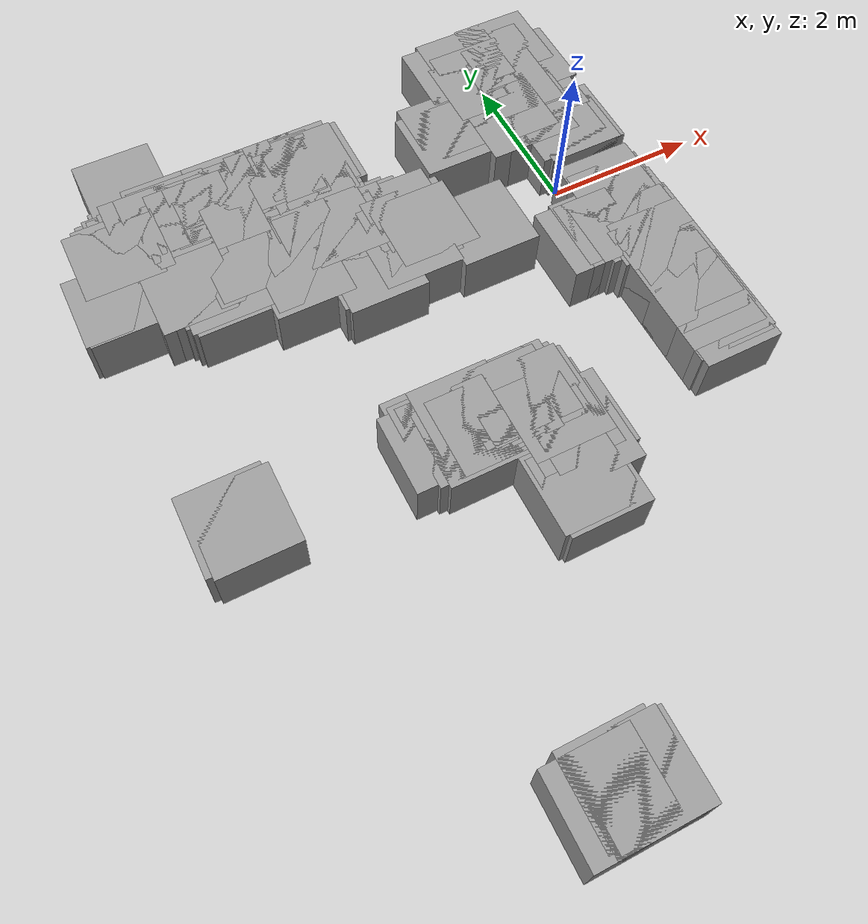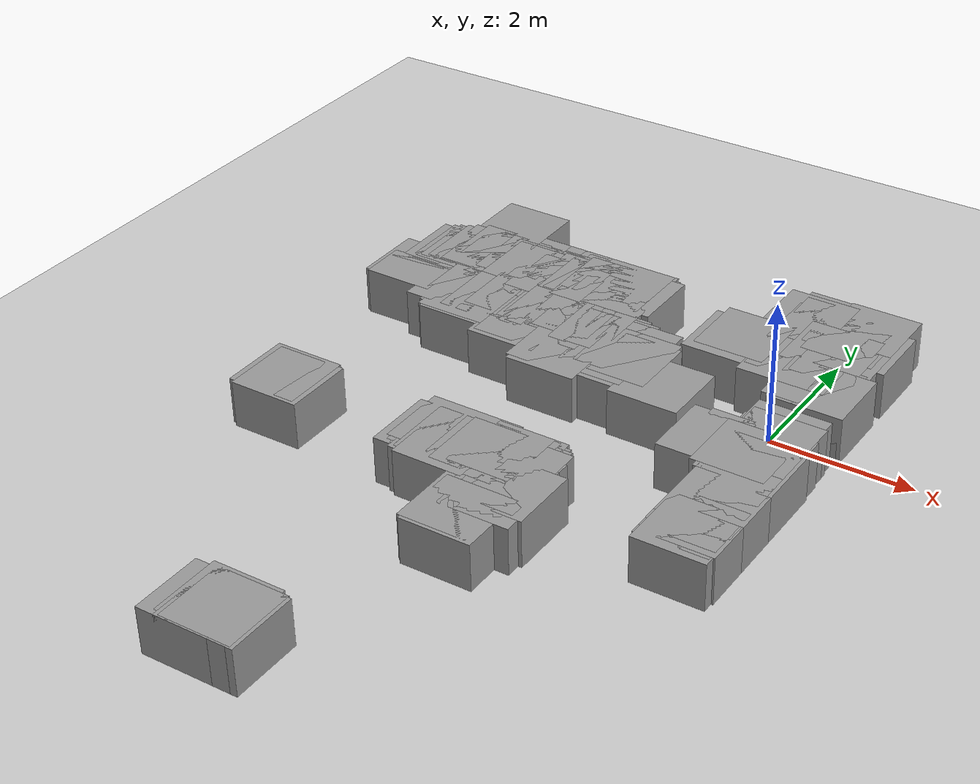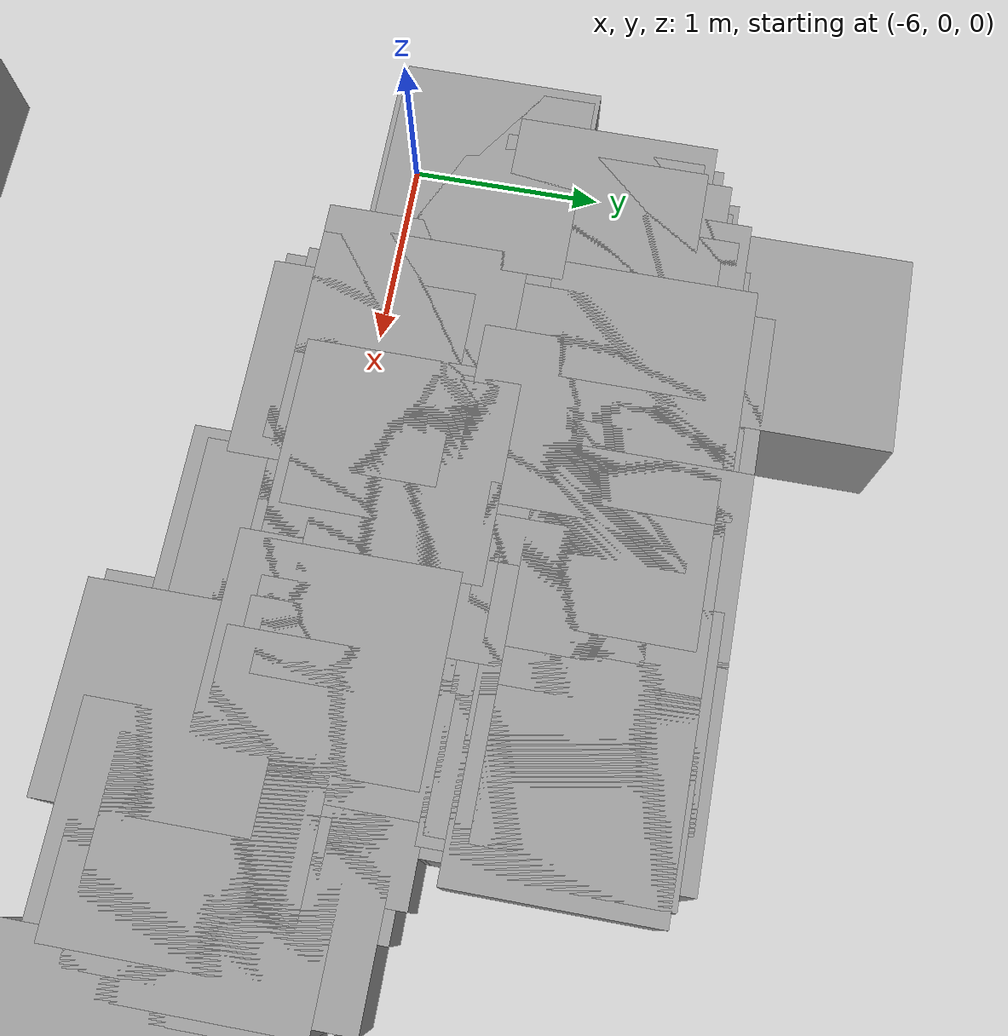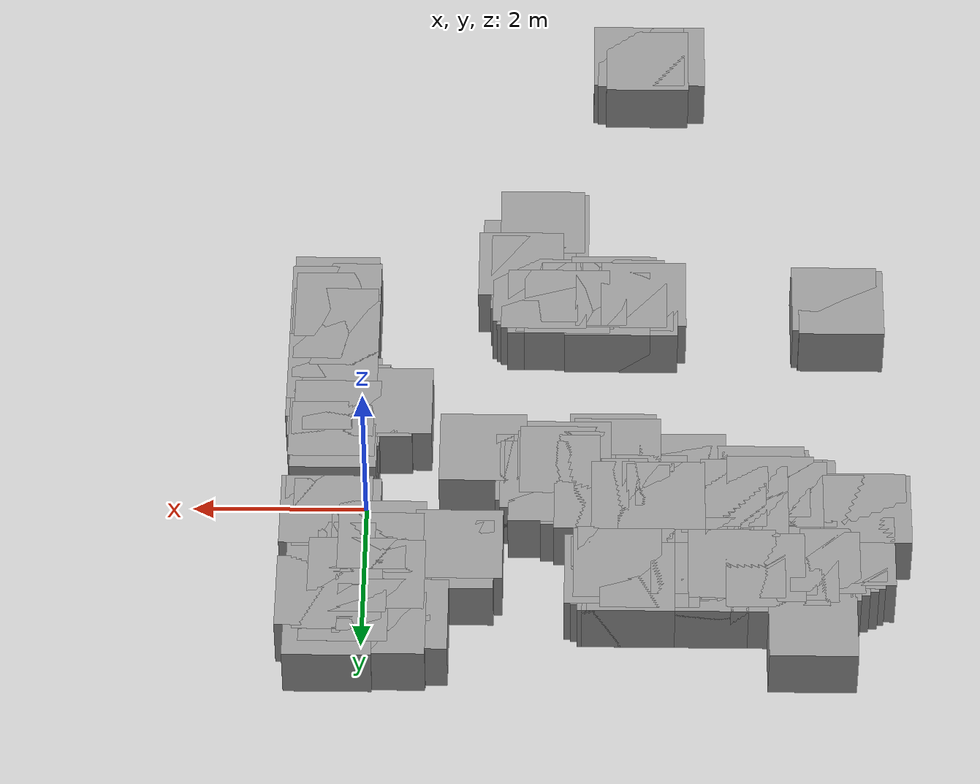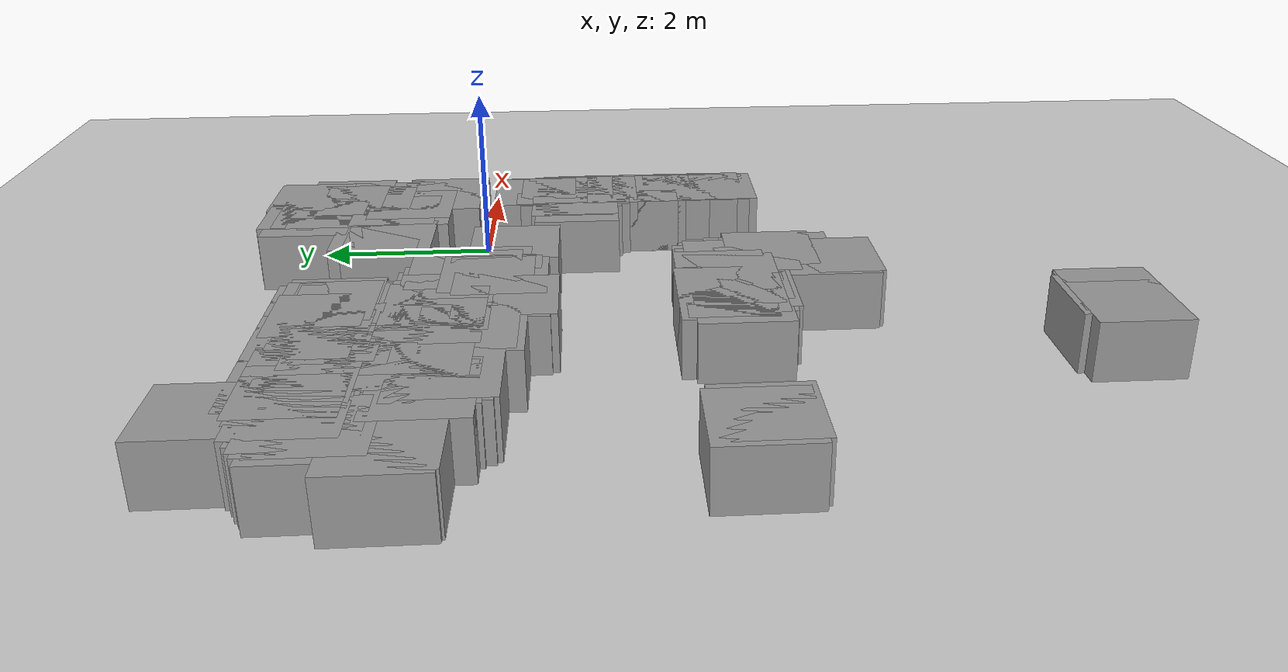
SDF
<sdf version="1.7">
 <world name="default">
  <model name="ground_plane">
   <static>1</static>
   <link name="link">
    <collision name="collision">
     <geometry><plane><normal>0 0 1</normal><size>100 100</size></plane></geometry>
     <surface>
      <contact><collide_bitmask>65535</collide_bitmask></contact>
      <friction><ode><mu>100</mu><mu2>50</mu2></ode></friction>
     </surface>
    </collision>
    <visual name="visual">
     <cast_shadows>0</cast_shadows>
     <geometry><plane><normal>0 0 1</normal><size>100 100</size></plane></geometry>
     <material>
      <script><uri>file://media/materials/scripts/gazebo.material</uri><name>Gazebo/Grey</name></script>
     </material>
    </visual>
   </link>
  </model>
  <include>
   <uri>model://unit_box</uri>
   <name>map_box_359</name>
   <pose>0.35719 2.14754 0.15000 0.00000 0.00000 0.00000</pose>
   <scale>0.05000 0.10000 0.80000</scale>
  </include>
  <include>
   <uri>model://unit_box</uri>
   <name>map_box_368</name>
   <pose>-5.09281 2.09754 0.15000 0.00000 0.00000 0.00000</pose>
   <scale>0.05000 0.10000 0.80000</scale>
  </include>
  <include>
   <uri>model://unit_box</uri>
   <name>map_box_369</name>
   <pose>-0.49281 2.04754 0.15000 0.00000 0.00000 0.00000</pose>
   <scale>0.05000 0.20000 0.80000</scale>
  </include>
  <include>
   <uri>model://unit_box</uri>
   <name>map_box_370</name>
   <pose>-0.24281 2.12254 0.15000 0.00000 0.00000 0.00000</pose>
   <scale>0.05000 0.05000 0.80000</scale>
  </include>
  <include>
   <uri>model://unit_box</uri>
   <name>map_box_383</name>
   <pose>-0.21781 1.97254 0.15000 0.00000 0.00000 0.00000</pose>
   <scale>0.10000 0.15000 0.80000</scale>
  </include>
  <include>
   <uri>model://unit_box</uri>
   <name>map_box_384</name>
   <pose>0.18219 1.94754 0.15000 0.00000 0.00000 0.00000</pose>
   <scale>0.10000 0.20000 0.80000</scale>
  </include>
  <include>
   <uri>model://unit_box</uri>
   <name>map_box_388</name>
   <pose>0.35719 1.22254 0.15000 0.00000 0.00000 0.00000</pose>
   <scale>0.05000 1.55000 0.80000</scale>
  </include>
  <include>
   <uri>model://unit_box</uri>
   <name>map_box_389</name>
   <pose>0.45719 1.72254 0.15000 0.00000 0.00000 0.00000</pose>
   <scale>0.05000 0.55000 0.80000</scale>
  </include>
  <include>
   <uri>model://unit_box</uri>
   <name>map_box_394</name>
   <pose>-0.19281 1.82254 0.15000 0.00000 0.00000 0.00000</pose>
   <scale>0.05000 0.15000 0.80000</scale>
  </include>
  <include>
   <uri>model://unit_box</uri>
   <name>map_box_401</name>
   <pose>-0.24281 1.79754 0.15000 0.00000 0.00000 0.00000</pose>
   <scale>0.05000 0.10000 0.80000</scale>
  </include>
  <include>
   <uri>model://unit_box</uri>
   <name>map_box_408</name>
   <pose>0.25719 1.77254 0.15000 0.00000 0.00000 0.00000</pose>
   <scale>0.05000 0.05000 0.80000</scale>
  </include>
  <include>
   <uri>model://unit_box</uri>
   <name>map_box_411</name>
   <pose>-0.29281 1.64754 0.15000 0.00000 0.00000 0.00000</pose>
   <scale>0.05000 0.10000 0.80000</scale>
  </include>
  <include>
   <uri>model://unit_box</uri>
   <name>map_box_412</name>
   <pose>-2.99281 1.47254 0.15000 0.00000 0.00000 0.00000</pose>
   <scale>0.05000 0.25000 0.80000</scale>
  </include>
  <include>
   <uri>model://unit_box</uri>
   <name>map_box_415</name>
   <pose>-2.94281 1.47254 0.15000 0.00000 0.00000 0.00000</pose>
   <scale>0.05000 0.15000 0.80000</scale>
  </include>
  <include>
   <uri>model://unit_box</uri>
   <name>map_box_416</name>
   <pose>-0.21781 1.47254 0.15000 0.00000 0.00000 0.00000</pose>
   <scale>0.10000 0.15000 0.80000</scale>
  </include>
  <include>
   <uri>model://unit_box</uri>
   <name>map_box_417</name>
   <pose>0.20719 1.52254 0.15000 0.00000 0.00000 0.00000</pose>
   <scale>0.05000 0.05000 0.80000</scale>
  </include>
  <include>
   <uri>model://unit_box</uri>
   <name>map_box_421</name>
   <pose>-4.66781 1.47254 0.15000 0.00000 0.00000 0.00000</pose>
   <scale>0.10000 0.05000 0.80000</scale>
  </include>
  <include>
   <uri>model://unit_box</uri>
   <name>map_box_422</name>
   <pose>-3.86781 1.47254 0.15000 0.00000 0.00000 0.00000</pose>
   <scale>0.10000 0.05000 0.80000</scale>
  </include>
  <include>
   <uri>model://unit_box</uri>
   <name>map_box_423</name>
   <pose>-3.69281 1.47254 0.15000 0.00000 0.00000 0.00000</pose>
   <scale>0.05000 0.05000 0.80000</scale>
  </include>
  <include>
   <uri>model://unit_box</uri>
   <name>map_box_424</name>
   <pose>-3.04281 1.47254 0.15000 0.00000 0.00000 0.00000</pose>
   <scale>0.05000 0.05000 0.80000</scale>
  </include>
  <include>
   <uri>model://unit_box</uri>
   <name>map_box_425</name>
   <pose>-2.86781 1.39754 0.15000 0.00000 0.00000 0.00000</pose>
   <scale>0.10000 0.20000 0.80000</scale>
  </include>
  <include>
   <uri>model://unit_box</uri>
   <name>map_box_426</name>
   <pose>0.10719 1.44754 0.15000 0.00000 0.00000 0.00000</pose>
   <scale>0.05000 0.10000 0.80000</scale>
  </include>
  <include>
   <uri>model://unit_box</uri>
   <name>map_box_429</name>
   <pose>-4.61781 1.39754 0.15000 0.00000 0.00000 0.00000</pose>
   <scale>0.10000 0.10000 0.80000</scale>
  </include>
  <include>
   <uri>model://unit_box</uri>
   <name>map_box_430</name>
   <pose>-3.79281 1.37254 0.15000 0.00000 0.00000 0.00000</pose>
   <scale>0.15000 0.15000 0.80000</scale>
  </include>
  <include>
   <uri>model://unit_box</uri>
   <name>map_box_431</name>
   <pose>-3.31781 1.42254 0.15000 0.00000 0.00000 0.00000</pose>
   <scale>0.10000 0.05000 0.80000</scale>
  </include>
  <include>
   <uri>model://unit_box</uri>
   <name>map_box_432</name>
   <pose>-3.19281 1.42254 0.15000 0.00000 0.00000 0.00000</pose>
   <scale>0.05000 0.05000 0.80000</scale>
  </include>
  <include>
   <uri>model://unit_box</uri>
   <name>map_box_433</name>
   <pose>0.15719 1.42254 0.15000 0.00000 0.00000 0.00000</pose>
   <scale>0.05000 0.05000 0.80000</scale>
  </include>
  <include>
   <uri>model://unit_box</uri>
   <name>map_box_434</name>
   <pose>-4.99281 1.37254 0.15000 0.00000 0.00000 0.00000</pose>
   <scale>0.05000 0.05000 0.80000</scale>
  </include>
  <include>
   <uri>model://unit_box</uri>
   <name>map_box_435</name>
   <pose>-4.79281 1.37254 0.15000 0.00000 0.00000 0.00000</pose>
   <scale>0.05000 0.05000 0.80000</scale>
  </include>
  <include>
   <uri>model://unit_box</uri>
   <name>map_box_436</name>
   <pose>-4.51781 1.32254 0.15000 0.00000 0.00000 0.00000</pose>
   <scale>0.10000 0.15000 0.80000</scale>
  </include>
  <include>
   <uri>model://unit_box</uri>
   <name>map_box_437</name>
   <pose>-3.96781 1.37254 0.15000 0.00000 0.00000 0.00000</pose>
   <scale>0.20000 0.05000 0.80000</scale>
  </include>
  <include>
   <uri>model://unit_box</uri>
   <name>map_box_438</name>
   <pose>-3.34281 1.32254 0.15000 0.00000 0.00000 0.00000</pose>
   <scale>0.05000 0.15000 0.80000</scale>
  </include>
  <include>
   <uri>model://unit_box</uri>
   <name>map_box_439</name>
   <pose>-3.24281 1.37254 0.15000 0.00000 0.00000 0.00000</pose>
   <scale>0.05000 0.05000 0.80000</scale>
  </include>
  <include>
   <uri>model://unit_box</uri>
   <name>map_box_440</name>
   <pose>-2.79281 1.37254 0.15000 0.00000 0.00000 0.00000</pose>
   <scale>0.05000 0.05000 0.80000</scale>
  </include>
  <include>
   <uri>model://unit_box</uri>
   <name>map_box_443</name>
   <pose>-5.14281 1.29754 0.15000 0.00000 0.00000 0.00000</pose>
   <scale>0.05000 0.10000 0.80000</scale>
  </include>
  <include>
   <uri>model://unit_box</uri>
   <name>map_box_444</name>
   <pose>-4.89281 1.32254 0.15000 0.00000 0.00000 0.00000</pose>
   <scale>0.15000 0.05000 0.80000</scale>
  </include>
  <include>
   <uri>model://unit_box</uri>
   <name>map_box_445</name>
   <pose>-4.74281 1.29754 0.15000 0.00000 0.00000 0.00000</pose>
   <scale>0.05000 0.10000 0.80000</scale>
  </include>
  <include>
   <uri>model://unit_box</uri>
   <name>map_box_446</name>
   <pose>-4.59281 1.32254 0.15000 0.00000 0.00000 0.00000</pose>
   <scale>0.05000 0.05000 0.80000</scale>
  </include>
  <include>
   <uri>model://unit_box</uri>
   <name>map_box_447</name>
   <pose>-4.44281 1.27254 0.15000 0.00000 0.00000 0.00000</pose>
   <scale>0.05000 0.15000 0.80000</scale>
  </include>
  <include>
   <uri>model://unit_box</uri>
   <name>map_box_448</name>
   <pose>-4.34281 1.22254 0.15000 0.00000 0.00000 0.00000</pose>
   <scale>0.05000 0.25000 0.80000</scale>
  </include>
  <include>
   <uri>model://unit_box</uri>
   <name>map_box_449</name>
   <pose>-4.24281 1.32254 0.15000 0.00000 0.00000 0.00000</pose>
   <scale>0.05000 0.05000 0.80000</scale>
  </include>
  <include>
   <uri>model://unit_box</uri>
   <name>map_box_450</name>
   <pose>-4.14281 1.29754 0.15000 0.00000 0.00000 0.00000</pose>
   <scale>0.05000 0.10000 0.80000</scale>
  </include>
  <include>
   <uri>model://unit_box</uri>
   <name>map_box_451</name>
   <pose>-3.99281 1.32254 0.15000 0.00000 0.00000 0.00000</pose>
   <scale>0.05000 0.05000 0.80000</scale>
  </include>
  <include>
   <uri>model://unit_box</uri>
   <name>map_box_452</name>
   <pose>-3.46781 1.29754 0.15000 0.00000 0.00000 0.00000</pose>
   <scale>0.20000 0.10000 0.80000</scale>
  </include>
  <include>
   <uri>model://unit_box</uri>
   <name>map_box_453</name>
   <pose>-3.29281 1.32254 0.15000 0.00000 0.00000 0.00000</pose>
   <scale>0.05000 0.05000 0.80000</scale>
  </include>
  <include>
   <uri>model://unit_box</uri>
   <name>map_box_454</name>
   <pose>-2.94281 1.24754 0.15000 0.00000 0.00000 0.00000</pose>
   <scale>0.05000 0.20000 0.80000</scale>
  </include>
  <include>
   <uri>model://unit_box</uri>
   <name>map_box_455</name>
   <pose>-5.19281 1.19754 0.15000 0.00000 0.00000 0.00000</pose>
   <scale>0.05000 0.20000 0.80000</scale>
  </include>
  <include>
   <uri>model://unit_box</uri>
   <name>map_box_456</name>
   <pose>-5.04281 1.24754 0.15000 0.00000 0.00000 0.00000</pose>
   <scale>0.05000 0.10000 0.80000</scale>
  </include>
  <include>
   <uri>model://unit_box</uri>
   <name>map_box_457</name>
   <pose>-4.39281 1.27254 0.15000 0.00000 0.00000 0.00000</pose>
   <scale>0.05000 0.05000 0.80000</scale>
  </include>
  <include>
   <uri>model://unit_box</uri>
   <name>map_box_458</name>
   <pose>-4.29281 1.27254 0.15000 0.00000 0.00000 0.00000</pose>
   <scale>0.05000 0.05000 0.80000</scale>
  </include>
  <include>
   <uri>model://unit_box</uri>
   <name>map_box_459</name>
   <pose>-4.19281 1.27254 0.15000 0.00000 0.00000 0.00000</pose>
   <scale>0.05000 0.05000 0.80000</scale>
  </include>
  <include>
   <uri>model://unit_box</uri>
   <name>map_box_460</name>
   <pose>-3.76781 1.22254 0.15000 0.00000 0.00000 0.00000</pose>
   <scale>0.10000 0.15000 0.80000</scale>
  </include>
  <include>
   <uri>model://unit_box</uri>
   <name>map_box_461</name>
   <pose>-3.61781 1.27254 0.15000 0.00000 0.00000 0.00000</pose>
   <scale>0.10000 0.05000 0.80000</scale>
  </include>
  <include>
   <uri>model://unit_box</uri>
   <name>map_box_462</name>
   <pose>-2.99281 1.27254 0.15000 0.00000 0.00000 0.00000</pose>
   <scale>0.05000 0.05000 0.80000</scale>
  </include>
  <include>
   <uri>model://unit_box</uri>
   <name>map_box_463</name>
   <pose>-2.89281 1.27254 0.15000 0.00000 0.00000 0.00000</pose>
   <scale>0.05000 0.05000 0.80000</scale>
  </include>
  <include>
   <uri>model://unit_box</uri>
   <name>map_box_464</name>
   <pose>-5.34281 1.17254 0.15000 0.00000 0.00000 0.00000</pose>
   <scale>0.05000 0.15000 0.80000</scale>
  </include>
  <include>
   <uri>model://unit_box</uri>
   <name>map_box_465</name>
   <pose>-5.24281 1.22254 0.15000 0.00000 0.00000 0.00000</pose>
   <scale>0.05000 0.05000 0.80000</scale>
  </include>
  <include>
   <uri>model://unit_box</uri>
   <name>map_box_466</name>
   <pose>-4.64281 1.22254 0.15000 0.00000 0.00000 0.00000</pose>
   <scale>0.05000 0.05000 0.80000</scale>
  </include>
  <include>
   <uri>model://unit_box</uri>
   <name>map_box_467</name>
   <pose>-4.49281 1.19754 0.15000 0.00000 0.00000 0.00000</pose>
   <scale>0.05000 0.10000 0.80000</scale>
  </include>
  <include>
   <uri>model://unit_box</uri>
   <name>map_box_468</name>
   <pose>-4.39281 1.09754 0.15000 0.00000 0.00000 0.00000</pose>
   <scale>0.05000 0.20000 0.80000</scale>
  </include>
  <include>
   <uri>model://unit_box</uri>
   <name>map_box_469</name>
   <pose>-3.84281 1.09754 0.15000 0.00000 0.00000 0.00000</pose>
   <scale>0.05000 0.20000 0.80000</scale>
  </include>
  <include>
   <uri>model://unit_box</uri>
   <name>map_box_470</name>
   <pose>-0.99281 1.17254 0.15000 0.00000 0.00000 0.00000</pose>
   <scale>0.05000 0.05000 0.80000</scale>
  </include>
  <include>
   <uri>model://unit_box</uri>
   <name>map_box_471</name>
   <pose>-5.41781 1.12254 0.15000 0.00000 0.00000 0.00000</pose>
   <scale>0.10000 0.05000 0.80000</scale>
  </include>
  <include>
   <uri>model://unit_box</uri>
   <name>map_box_472</name>
   <pose>-4.19281 1.09754 0.15000 0.00000 0.00000 0.00000</pose>
   <scale>0.05000 0.10000 0.80000</scale>
  </include>
  <include>
   <uri>model://unit_box</uri>
   <name>map_box_473</name>
   <pose>-3.89281 1.09754 0.15000 0.00000 0.00000 0.00000</pose>
   <scale>0.05000 0.10000 0.80000</scale>
  </include>
  <include>
   <uri>model://unit_box</uri>
   <name>map_box_474</name>
   <pose>-3.79281 1.09754 0.15000 0.00000 0.00000 0.00000</pose>
   <scale>0.05000 0.10000 0.80000</scale>
  </include>
  <include>
   <uri>model://unit_box</uri>
   <name>map_box_475</name>
   <pose>-5.54281 1.07254 0.15000 0.00000 0.00000 0.00000</pose>
   <scale>0.05000 0.05000 0.80000</scale>
  </include>
  <include>
   <uri>model://unit_box</uri>
   <name>map_box_476</name>
   <pose>-5.39281 1.04754 0.15000 0.00000 0.00000 0.00000</pose>
   <scale>0.05000 0.10000 0.80000</scale>
  </include>
  <include>
   <uri>model://unit_box</uri>
   <name>map_box_477</name>
   <pose>-4.09281 1.04754 0.15000 0.00000 0.00000 0.00000</pose>
   <scale>0.05000 0.10000 0.80000</scale>
  </include>
  <include>
   <uri>model://unit_box</uri>
   <name>map_box_478</name>
   <pose>-0.19281 1.07254 0.15000 0.00000 0.00000 0.00000</pose>
   <scale>0.05000 0.05000 0.80000</scale>
  </include>
  <include>
   <uri>model://unit_box</uri>
   <name>map_box_480</name>
   <pose>-5.44281 1.02254 0.15000 0.00000 0.00000 0.00000</pose>
   <scale>0.05000 0.05000 0.80000</scale>
  </include>
  <include>
   <uri>model://unit_box</uri>
   <name>map_box_481</name>
   <pose>-1.09281 1.02254 0.15000 0.00000 0.00000 0.00000</pose>
   <scale>0.05000 0.05000 0.80000</scale>
  </include>
  <include>
   <uri>model://unit_box</uri>
   <name>map_box_482</name>
   <pose>-0.14281 0.94754 0.15000 0.00000 0.00000 0.00000</pose>
   <scale>0.05000 0.10000 0.80000</scale>
  </include>
  <include>
   <uri>model://unit_box</uri>
   <name>map_box_483</name>
   <pose>-0.21781 0.89754 0.15000 0.00000 0.00000 0.00000</pose>
   <scale>0.10000 0.10000 0.80000</scale>
  </include>
  <include>
   <uri>model://unit_box</uri>
   <name>map_box_484</name>
   <pose>0.00719 0.89754 0.15000 0.00000 0.00000 0.00000</pose>
   <scale>0.05000 0.10000 0.80000</scale>
  </include>
  <include>
   <uri>model://unit_box</uri>
   <name>map_box_489</name>
   <pose>0.30719 0.57254 0.15000 0.00000 0.00000 0.00000</pose>
   <scale>0.05000 0.05000 0.80000</scale>
  </include>
  <include>
   <uri>model://unit_box</uri>
   <name>map_box_490</name>
   <pose>0.45719 0.52254 0.15000 0.00000 0.00000 0.00000</pose>
   <scale>0.05000 0.15000 0.80000</scale>
  </include>
  <include>
   <uri>model://unit_box</uri>
   <name>map_box_491</name>
   <pose>0.40719 0.52254 0.15000 0.00000 0.00000 0.00000</pose>
   <scale>0.05000 0.05000 0.80000</scale>
  </include>
  <include>
   <uri>model://unit_box</uri>
   <name>map_box_492</name>
   <pose>-5.74281 0.44754 0.15000 0.00000 0.00000 0.00000</pose>
   <scale>0.05000 0.10000 0.80000</scale>
  </include>
  <include>
   <uri>model://unit_box</uri>
   <name>map_box_493</name>
   <pose>-4.04281 0.47254 0.15000 0.00000 0.00000 0.00000</pose>
   <scale>0.05000 0.05000 0.80000</scale>
  </include>
  <include>
   <uri>model://unit_box</uri>
   <name>map_box_494</name>
   <pose>-3.54281 0.37254 0.15000 0.00000 0.00000 0.00000</pose>
   <scale>0.05000 0.25000 0.80000</scale>
  </include>
  <include>
   <uri>model://unit_box</uri>
   <name>map_box_495</name>
   <pose>-5.69281 0.42254 0.15000 0.00000 0.00000 0.00000</pose>
   <scale>0.05000 0.05000 0.80000</scale>
  </include>
  <include>
   <uri>model://unit_box</uri>
   <name>map_box_496</name>
   <pose>-4.09281 0.42254 0.15000 0.00000 0.00000 0.00000</pose>
   <scale>0.05000 0.05000 0.80000</scale>
  </include>
  <include>
   <uri>model://unit_box</uri>
   <name>map_box_497</name>
   <pose>-3.59281 0.42254 0.15000 0.00000 0.00000 0.00000</pose>
   <scale>0.05000 0.05000 0.80000</scale>
  </include>
  <include>
   <uri>model://unit_box</uri>
   <name>map_box_498</name>
   <pose>-3.44281 0.27254 0.15000 0.00000 0.00000 0.00000</pose>
   <scale>0.05000 0.35000 0.80000</scale>
  </include>
  <include>
   <uri>model://unit_box</uri>
   <name>map_box_499</name>
   <pose>-3.01781 0.42254 0.15000 0.00000 0.00000 0.00000</pose>
   <scale>0.10000 0.05000 0.80000</scale>
  </include>
  <include>
   <uri>model://unit_box</uri>
   <name>map_box_500</name>
   <pose>-4.24281 0.37254 0.15000 0.00000 0.00000 0.00000</pose>
   <scale>0.05000 0.05000 0.80000</scale>
  </include>
  <include>
   <uri>model://unit_box</uri>
   <name>map_box_501</name>
   <pose>-3.39281 0.27254 0.15000 0.00000 0.00000 0.00000</pose>
   <scale>0.05000 0.25000 0.80000</scale>
  </include>
  <include>
   <uri>model://unit_box</uri>
   <name>map_box_502</name>
   <pose>-2.99281 0.32254 0.15000 0.00000 0.00000 0.00000</pose>
   <scale>0.05000 0.15000 0.80000</scale>
  </include>
  <include>
   <uri>model://unit_box</uri>
   <name>map_box_504</name>
   <pose>-4.34281 0.32254 0.15000 0.00000 0.00000 0.00000</pose>
   <scale>0.05000 0.05000 0.80000</scale>
  </include>
  <include>
   <uri>model://unit_box</uri>
   <name>map_box_505</name>
   <pose>-4.11781 0.32254 0.15000 0.00000 0.00000 0.00000</pose>
   <scale>0.10000 0.05000 0.80000</scale>
  </include>
  <include>
   <uri>model://unit_box</uri>
   <name>map_box_506</name>
   <pose>-3.49281 0.29754 0.15000 0.00000 0.00000 0.00000</pose>
   <scale>0.05000 0.10000 0.80000</scale>
  </include>
  <include>
   <uri>model://unit_box</uri>
   <name>map_box_507</name>
   <pose>-3.04281 0.29754 0.15000 0.00000 0.00000 0.00000</pose>
   <scale>0.05000 0.10000 0.80000</scale>
  </include>
  <include>
   <uri>model://unit_box</uri>
   <name>map_box_508</name>
   <pose>-2.89281 0.29754 0.15000 0.00000 0.00000 0.00000</pose>
   <scale>0.15000 0.10000 0.80000</scale>
  </include>
  <include>
   <uri>model://unit_box</uri>
   <name>map_box_509</name>
   <pose>-4.79281 0.24754 0.15000 0.00000 0.00000 0.00000</pose>
   <scale>0.05000 0.10000 0.80000</scale>
  </include>
  <include>
   <uri>model://unit_box</uri>
   <name>map_box_510</name>
   <pose>-4.16781 0.27254 0.15000 0.00000 0.00000 0.00000</pose>
   <scale>0.10000 0.05000 0.80000</scale>
  </include>
  <include>
   <uri>model://unit_box</uri>
   <name>map_box_511</name>
   <pose>-3.09281 0.27254 0.15000 0.00000 0.00000 0.00000</pose>
   <scale>0.05000 0.05000 0.80000</scale>
  </include>
  <include>
   <uri>model://unit_box</uri>
   <name>map_box_512</name>
   <pose>-2.66781 0.27254 0.15000 0.00000 0.00000 0.00000</pose>
   <scale>0.30000 0.05000 0.80000</scale>
  </include>
  <include>
   <uri>model://unit_box</uri>
   <name>map_box_513</name>
   <pose>-4.89281 0.22254 0.15000 0.00000 0.00000 0.00000</pose>
   <scale>0.05000 0.05000 0.80000</scale>
  </include>
  <include>
   <uri>model://unit_box</uri>
   <name>map_box_514</name>
   <pose>-4.74281 0.22254 0.15000 0.00000 0.00000 0.00000</pose>
   <scale>0.05000 0.05000 0.80000</scale>
  </include>
  <include>
   <uri>model://unit_box</uri>
   <name>map_box_515</name>
   <pose>-4.34281 0.22254 0.15000 0.00000 0.00000 0.00000</pose>
   <scale>0.05000 0.05000 0.80000</scale>
  </include>
  <include>
   <uri>model://unit_box</uri>
   <name>map_box_516</name>
   <pose>-4.09281 0.22254 0.15000 0.00000 0.00000 0.00000</pose>
   <scale>0.05000 0.05000 0.80000</scale>
  </include>
  <include>
   <uri>model://unit_box</uri>
   <name>map_box_517</name>
   <pose>-3.16781 0.22254 0.15000 0.00000 0.00000 0.00000</pose>
   <scale>0.10000 0.05000 0.80000</scale>
  </include>
  <include>
   <uri>model://unit_box</uri>
   <name>map_box_518</name>
   <pose>-2.74281 0.22254 0.15000 0.00000 0.00000 0.00000</pose>
   <scale>0.15000 0.05000 0.80000</scale>
  </include>
  <include>
   <uri>model://unit_box</uri>
   <name>map_box_519</name>
   <pose>-2.51781 0.22254 0.15000 0.00000 0.00000 0.00000</pose>
   <scale>0.20000 0.05000 0.80000</scale>
  </include>
  <include>
   <uri>model://unit_box</uri>
   <name>map_box_520</name>
   <pose>-2.14281 0.17254 0.15000 0.00000 0.00000 0.00000</pose>
   <scale>0.05000 0.15000 0.80000</scale>
  </include>
  <include>
   <uri>model://unit_box</uri>
   <name>map_box_521</name>
   <pose>-4.64281 0.17254 0.15000 0.00000 0.00000 0.00000</pose>
   <scale>0.15000 0.05000 0.80000</scale>
  </include>
  <include>
   <uri>model://unit_box</uri>
   <name>map_box_522</name>
   <pose>-3.19281 0.17254 0.15000 0.00000 0.00000 0.00000</pose>
   <scale>0.05000 0.05000 0.80000</scale>
  </include>
  <include>
   <uri>model://unit_box</uri>
   <name>map_box_523</name>
   <pose>-2.36781 0.17254 0.15000 0.00000 0.00000 0.00000</pose>
   <scale>0.40000 0.05000 0.80000</scale>
  </include>
  <include>
   <uri>model://unit_box</uri>
   <name>map_box_524</name>
   <pose>-2.09281 -0.02746 0.15000 0.00000 0.00000 0.00000</pose>
   <scale>0.05000 0.45000 0.80000</scale>
  </include>
  <include>
   <uri>model://unit_box</uri>
   <name>map_box_525</name>
   <pose>-2.04281 -0.02746 0.15000 0.00000 0.00000 0.00000</pose>
   <scale>0.05000 0.35000 0.80000</scale>
  </include>
  <include>
   <uri>model://unit_box</uri>
   <name>map_box_526</name>
   <pose>-4.59281 0.07254 0.15000 0.00000 0.00000 0.00000</pose>
   <scale>0.05000 0.05000 0.80000</scale>
  </include>
  <include>
   <uri>model://unit_box</uri>
   <name>map_box_527</name>
   <pose>-4.54281 0.02254 0.15000 0.00000 0.00000 0.00000</pose>
   <scale>0.05000 0.05000 0.80000</scale>
  </include>
  <include>
   <uri>model://unit_box</uri>
   <name>map_box_529</name>
   <pose>-3.59281 -0.07746 0.15000 0.00000 0.00000 0.00000</pose>
   <scale>0.05000 0.05000 0.80000</scale>
  </include>
  <include>
   <uri>model://unit_box</uri>
   <name>map_box_530</name>
   <pose>-3.64281 -0.15246 0.15000 0.00000 0.00000 0.00000</pose>
   <scale>0.05000 0.10000 0.80000</scale>
  </include>
  <include>
   <uri>model://unit_box</uri>
   <name>map_box_531</name>
   <pose>-2.19281 -0.12746 0.15000 0.00000 0.00000 0.00000</pose>
   <scale>0.15000 0.05000 0.80000</scale>
  </include>
  <include>
   <uri>model://unit_box</uri>
   <name>map_box_532</name>
   <pose>-1.99281 -0.12746 0.15000 0.00000 0.00000 0.00000</pose>
   <scale>0.05000 0.05000 0.80000</scale>
  </include>
  <include>
   <uri>model://unit_box</uri>
   <name>map_box_533</name>
   <pose>-2.24281 -0.17746 0.15000 0.00000 0.00000 0.00000</pose>
   <scale>0.15000 0.05000 0.80000</scale>
  </include>
  <include>
   <uri>model://unit_box</uri>
   <name>map_box_535</name>
   <pose>-2.26781 -0.25246 0.15000 0.00000 0.00000 0.00000</pose>
   <scale>0.10000 0.10000 0.80000</scale>
  </include>
  <include>
   <uri>model://unit_box</uri>
   <name>map_box_537</name>
   <pose>-2.89281 -0.37746 0.15000 0.00000 0.00000 0.00000</pose>
   <scale>0.05000 0.25000 0.80000</scale>
  </include>
  <include>
   <uri>model://unit_box</uri>
   <name>map_box_539</name>
   <pose>-2.31781 -0.32746 0.15000 0.00000 0.00000 0.00000</pose>
   <scale>0.10000 0.05000 0.80000</scale>
  </include>
  <include>
   <uri>model://unit_box</uri>
   <name>map_box_540</name>
   <pose>-2.84281 -0.45246 0.15000 0.00000 0.00000 0.00000</pose>
   <scale>0.05000 0.20000 0.80000</scale>
  </include>
  <include>
   <uri>model://unit_box</uri>
   <name>map_box_541</name>
   <pose>-1.34281 -0.42746 0.15000 0.00000 0.00000 0.00000</pose>
   <scale>0.05000 0.05000 0.80000</scale>
  </include>
  <include>
   <uri>model://unit_box</uri>
   <name>map_box_544</name>
   <pose>0.38219 -0.60246 0.15000 0.00000 0.00000 0.00000</pose>
   <scale>0.10000 0.10000 0.80000</scale>
  </include>
  <include>
   <uri>model://unit_box</uri>
   <name>map_box_546</name>
   <pose>0.35719 -0.92746 0.15000 0.00000 0.00000 0.00000</pose>
   <scale>0.05000 0.55000 0.80000</scale>
  </include>
  <include>
   <uri>model://unit_box</uri>
   <name>map_box_548</name>
   <pose>0.40719 -0.77746 0.15000 0.00000 0.00000 0.00000</pose>
   <scale>0.05000 0.05000 0.80000</scale>
  </include>
  <include>
   <uri>model://unit_box</uri>
   <name>map_box_549</name>
   <pose>0.40719 -0.87746 0.15000 0.00000 0.00000 0.00000</pose>
   <scale>0.05000 0.05000 0.80000</scale>
  </include>
  <include>
   <uri>model://unit_box</uri>
   <name>map_box_551</name>
   <pose>-0.01781 -1.07746 0.15000 0.00000 0.00000 0.00000</pose>
   <scale>0.60000 0.05000 0.80000</scale>
  </include>
  <include>
   <uri>model://unit_box</uri>
   <name>map_box_552</name>
   <pose>0.43219 -1.07746 0.15000 0.00000 0.00000 0.00000</pose>
   <scale>0.10000 0.05000 0.80000</scale>
  </include>
  <include>
   <uri>model://unit_box</uri>
   <name>map_box_554</name>
   <pose>-0.24281 -1.12746 0.15000 0.00000 0.00000 0.00000</pose>
   <scale>0.35000 0.05000 0.80000</scale>
  </include>
  <include>
   <uri>model://unit_box</uri>
   <name>map_box_555</name>
   <pose>0.00719 -1.12746 0.15000 0.00000 0.00000 0.00000</pose>
   <scale>0.05000 0.05000 0.80000</scale>
  </include>
  <include>
   <uri>model://unit_box</uri>
   <name>map_box_556</name>
   <pose>0.15719 -1.12746 0.15000 0.00000 0.00000 0.00000</pose>
   <scale>0.05000 0.05000 0.80000</scale>
  </include>
  <include>
   <uri>model://unit_box</uri>
   <name>map_box_557</name>
   <pose>0.40719 -1.37746 0.15000 0.00000 0.00000 0.00000</pose>
   <scale>0.05000 0.55000 0.80000</scale>
  </include>
  <include>
   <uri>model://unit_box</uri>
   <name>map_box_560</name>
   <pose>0.25719 -1.17746 0.15000 0.00000 0.00000 0.00000</pose>
   <scale>0.05000 0.05000 0.80000</scale>
  </include>
  <include>
   <uri>model://unit_box</uri>
   <name>map_box_563</name>
   <pose>0.35719 -1.27746 0.15000 0.00000 0.00000 0.00000</pose>
   <scale>0.05000 0.05000 0.80000</scale>
  </include>
  <include>
   <uri>model://unit_box</uri>
   <name>map_box_565</name>
   <pose>0.45719 -1.37746 0.15000 0.00000 0.00000 0.00000</pose>
   <scale>0.05000 0.05000 0.80000</scale>
  </include>
  <include>
   <uri>model://unit_box</uri>
   <name>map_box_567</name>
   <pose>0.45719 -1.65246 0.15000 0.00000 0.00000 0.00000</pose>
   <scale>0.05000 0.10000 0.80000</scale>
  </include>
  <include>
   <uri>model://unit_box</uri>
   <name>map_box_568</name>
   <pose>0.40719 -1.75246 0.15000 0.00000 0.00000 0.00000</pose>
   <scale>0.05000 0.10000 0.80000</scale>
  </include>
  <include>
   <uri>model://unit_box</uri>
   <name>map_box_572</name>
   <pose>0.40719 -1.87746 0.15000 0.00000 0.00000 0.00000</pose>
   <scale>0.05000 0.05000 0.80000</scale>
  </include>
  <include>
   <uri>model://unit_box</uri>
   <name>map_box_573</name>
   <pose>0.40719 -1.97746 0.15000 0.00000 0.00000 0.00000</pose>
   <scale>0.05000 0.05000 0.80000</scale>
  </include>
  <include>
   <uri>model://unit_box</uri>
   <name>map_box_576</name>
   <pose>0.45719 -2.05246 0.15000 0.00000 0.00000 0.00000</pose>
   <scale>0.05000 0.10000 0.80000</scale>
  </include>
  <include>
   <uri>model://unit_box</uri>
   <name>map_box_577</name>
   <pose>0.40719 -2.07746 0.15000 0.00000 0.00000 0.00000</pose>
   <scale>0.05000 0.05000 0.80000</scale>
  </include>
  <include>
   <uri>model://unit_box</uri>
   <name>map_box_582</name>
   <pose>0.40719 -2.17746 0.15000 0.00000 0.00000 0.00000</pose>
   <scale>0.05000 0.05000 0.80000</scale>
  </include>
  <include>
   <uri>model://unit_box</uri>
   <name>map_box_597</name>
   <pose>0.40719 -2.27746 0.15000 0.00000 0.00000 0.00000</pose>
   <scale>0.05000 0.05000 0.80000</scale>
  </include>
  <include>
   <uri>model://unit_box</uri>
   <name>map_box_608</name>
   <pose>0.43219 -2.37746 0.15000 0.00000 0.00000 0.00000</pose>
   <scale>0.10000 0.05000 0.80000</scale>
  </include>
  <include>
   <uri>model://unit_box</uri>
   <name>map_box_615</name>
   <pose>0.40719 -2.47746 0.15000 0.00000 0.00000 0.00000</pose>
   <scale>0.05000 0.05000 0.80000</scale>
  </include>
  <include>
   <uri>model://unit_box</uri>
   <name>map_box_622</name>
   <pose>0.40719 -2.62746 0.15000 0.00000 0.00000 0.00000</pose>
   <scale>0.05000 0.05000 0.80000</scale>
  </include>
  <include>
   <uri>model://unit_box</uri>
   <name>map_box_623</name>
   <pose>-3.09281 -2.67746 0.15000 0.00000 0.00000 0.00000</pose>
   <scale>0.05000 0.05000 0.80000</scale>
  </include>
  <include>
   <uri>model://unit_box</uri>
   <name>map_box_624</name>
   <pose>-2.76781 -2.67746 0.15000 0.00000 0.00000 0.00000</pose>
   <scale>0.10000 0.05000 0.80000</scale>
  </include>
  <include>
   <uri>model://unit_box</uri>
   <name>map_box_625</name>
   <pose>-2.29281 -2.70246 0.15000 0.00000 0.00000 0.00000</pose>
   <scale>0.15000 0.10000 0.80000</scale>
  </include>
  <include>
   <uri>model://unit_box</uri>
   <name>map_box_626</name>
   <pose>-2.09281 -2.70246 0.15000 0.00000 0.00000 0.00000</pose>
   <scale>0.15000 0.10000 0.80000</scale>
  </include>
  <include>
   <uri>model://unit_box</uri>
   <name>map_box_630</name>
   <pose>-5.51781 -2.72746 0.15000 0.00000 0.00000 0.00000</pose>
   <scale>0.10000 0.05000 0.80000</scale>
  </include>
  <include>
   <uri>model://unit_box</uri>
   <name>map_box_631</name>
   <pose>-3.04281 -2.75246 0.15000 0.00000 0.00000 0.00000</pose>
   <scale>0.05000 0.10000 0.80000</scale>
  </include>
  <include>
   <uri>model://unit_box</uri>
   <name>map_box_632</name>
   <pose>-2.19281 -2.72746 0.15000 0.00000 0.00000 0.00000</pose>
   <scale>0.05000 0.05000 0.80000</scale>
  </include>
  <include>
   <uri>model://unit_box</uri>
   <name>map_box_633</name>
   <pose>0.45719 -2.72746 0.15000 0.00000 0.00000 0.00000</pose>
   <scale>0.05000 0.05000 0.80000</scale>
  </include>
  <include>
   <uri>model://unit_box</uri>
   <name>map_box_636</name>
   <pose>-5.44281 -2.77746 0.15000 0.00000 0.00000 0.00000</pose>
   <scale>0.15000 0.05000 0.80000</scale>
  </include>
  <include>
   <uri>model://unit_box</uri>
   <name>map_box_637</name>
   <pose>-2.96781 -2.80246 0.15000 0.00000 0.00000 0.00000</pose>
   <scale>0.10000 0.10000 0.80000</scale>
  </include>
  <include>
   <uri>model://unit_box</uri>
   <name>map_box_638</name>
   <pose>-2.74281 -2.77746 0.15000 0.00000 0.00000 0.00000</pose>
   <scale>0.05000 0.05000 0.80000</scale>
  </include>
  <include>
   <uri>model://unit_box</uri>
   <name>map_box_639</name>
   <pose>-2.39281 -2.80246 0.15000 0.00000 0.00000 0.00000</pose>
   <scale>0.05000 0.10000 0.80000</scale>
  </include>
  <include>
   <uri>model://unit_box</uri>
   <name>map_box_640</name>
   <pose>-2.01781 -2.77746 0.15000 0.00000 0.00000 0.00000</pose>
   <scale>0.10000 0.05000 0.80000</scale>
  </include>
  <include>
   <uri>model://unit_box</uri>
   <name>map_box_641</name>
   <pose>0.40719 -2.77746 0.15000 0.00000 0.00000 0.00000</pose>
   <scale>0.05000 0.05000 0.80000</scale>
  </include>
  <include>
   <uri>model://unit_box</uri>
   <name>map_box_645</name>
   <pose>-3.19281 -2.82746 0.15000 0.00000 0.00000 0.00000</pose>
   <scale>0.05000 0.05000 0.80000</scale>
  </include>
  <include>
   <uri>model://unit_box</uri>
   <name>map_box_646</name>
   <pose>-2.89281 -2.82746 0.15000 0.00000 0.00000 0.00000</pose>
   <scale>0.05000 0.05000 0.80000</scale>
  </include>
  <include>
   <uri>model://unit_box</uri>
   <name>map_box_647</name>
   <pose>-2.49281 -2.82746 0.15000 0.00000 0.00000 0.00000</pose>
   <scale>0.15000 0.05000 0.80000</scale>
  </include>
  <include>
   <uri>model://unit_box</uri>
   <name>map_box_648</name>
   <pose>-1.96781 -2.82746 0.15000 0.00000 0.00000 0.00000</pose>
   <scale>0.10000 0.05000 0.80000</scale>
  </include>
  <include>
   <uri>model://unit_box</uri>
   <name>map_box_652</name>
   <pose>-2.94281 -2.87746 0.15000 0.00000 0.00000 0.00000</pose>
   <scale>0.05000 0.05000 0.80000</scale>
  </include>
  <include>
   <uri>model://unit_box</uri>
   <name>map_box_653</name>
   <pose>-2.64281 -2.87746 0.15000 0.00000 0.00000 0.00000</pose>
   <scale>0.35000 0.05000 0.80000</scale>
  </include>
  <include>
   <uri>model://unit_box</uri>
   <name>map_box_654</name>
   <pose>-1.91781 -2.87746 0.15000 0.00000 0.00000 0.00000</pose>
   <scale>0.10000 0.05000 0.80000</scale>
  </include>
  <include>
   <uri>model://unit_box</uri>
   <name>map_box_655</name>
   <pose>0.43219 -2.87746 0.15000 0.00000 0.00000 0.00000</pose>
   <scale>0.10000 0.05000 0.80000</scale>
  </include>
  <include>
   <uri>model://unit_box</uri>
   <name>map_box_660</name>
   <pose>-2.84281 -2.92746 0.15000 0.00000 0.00000 0.00000</pose>
   <scale>0.05000 0.05000 0.80000</scale>
  </include>
  <include>
   <uri>model://unit_box</uri>
   <name>map_box_679</name>
   <pose>-1.89281 -3.07746 0.15000 0.00000 0.00000 0.00000</pose>
   <scale>0.05000 0.15000 0.80000</scale>
  </include>
  <include>
   <uri>model://unit_box</uri>
   <name>map_box_695</name>
   <pose>-1.89281 -3.25246 0.15000 0.00000 0.00000 0.00000</pose>
   <scale>0.05000 0.10000 0.80000</scale>
  </include>
  <include>
   <uri>model://unit_box</uri>
   <name>map_box_696</name>
   <pose>-1.74281 -3.30246 0.15000 0.00000 0.00000 0.00000</pose>
   <scale>0.05000 0.10000 0.80000</scale>
  </include>
  <include>
   <uri>model://unit_box</uri>
   <name>map_box_697</name>
   <pose>-1.79281 -3.50246 0.15000 0.00000 0.00000 0.00000</pose>
   <scale>0.05000 0.10000 0.80000</scale>
  </include>
  <include>
   <uri>model://unit_box</uri>
   <name>map_box_698</name>
   <pose>-2.04281 -3.92746 0.15000 0.00000 0.00000 0.00000</pose>
   <scale>0.05000 0.05000 0.80000</scale>
  </include>
  <include>
   <uri>model://unit_box</uri>
   <name>map_box_699</name>
   <pose>-1.99281 -3.97746 0.15000 0.00000 0.00000 0.00000</pose>
   <scale>0.05000 0.05000 0.80000</scale>
  </include>
  <include>
   <uri>model://unit_box</uri>
   <name>map_box_702</name>
   <pose>-3.24281 -6.70246 0.15000 0.00000 0.00000 0.00000</pose>
   <scale>0.05000 0.10000 0.80000</scale>
  </include>
  <include>
   <uri>model://unit_box</uri>
   <name>map_box_703</name>
   <pose>-3.14281 -6.75246 0.15000 0.00000 0.00000 0.00000</pose>
   <scale>0.05000 0.10000 0.80000</scale>
  </include>
  <include>
   <uri>model://unit_box</uri>
   <name>map_box_704</name>
   <pose>-3.44281 -6.77746 0.15000 0.00000 0.00000 0.00000</pose>
   <scale>0.25000 0.05000 0.80000</scale>
  </include>
  <include>
   <uri>model://unit_box</uri>
   <name>map_box_705</name>
   <pose>-3.19281 -6.77746 0.15000 0.00000 0.00000 0.00000</pose>
   <scale>0.05000 0.05000 0.80000</scale>
  </include>
  <include>
   <uri>model://unit_box</uri>
   <name>map_box_706</name>
   <pose>-3.09281 -6.77746 0.15000 0.00000 0.00000 0.00000</pose>
   <scale>0.05000 0.05000 0.80000</scale>
  </include>
 </world>
</sdf>
